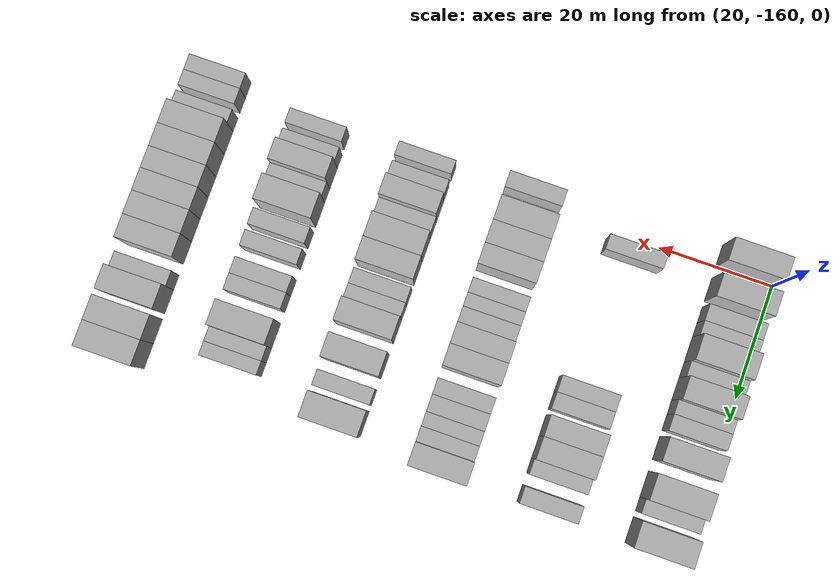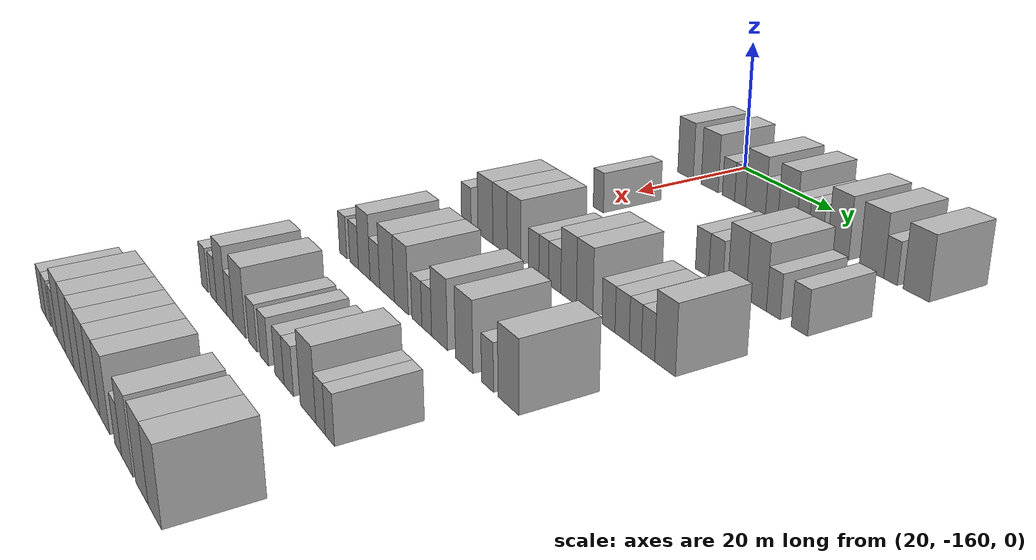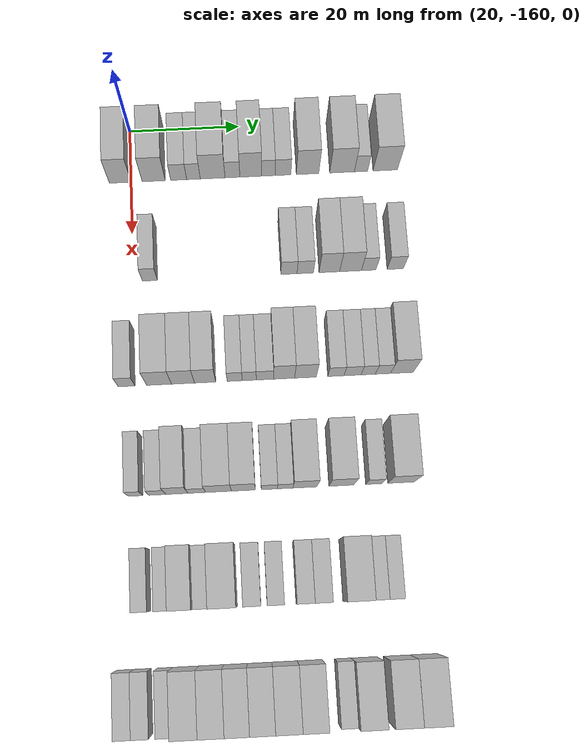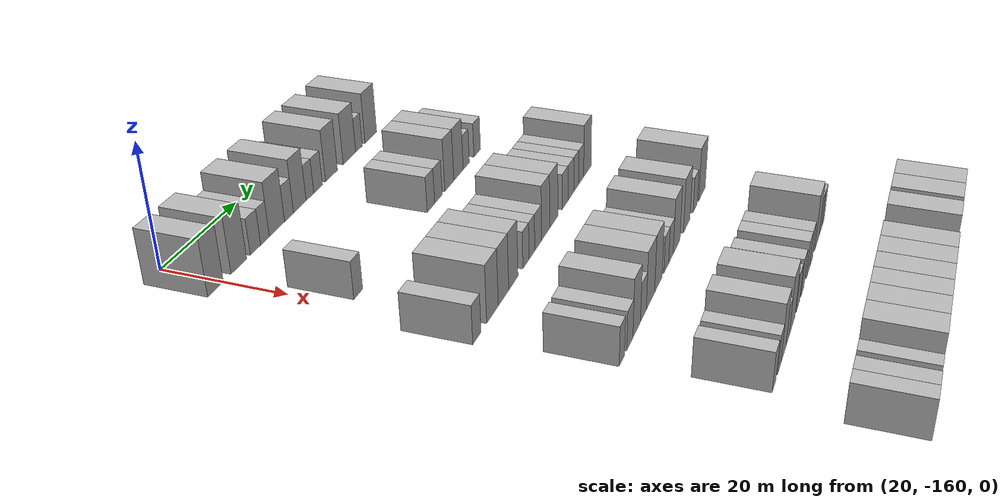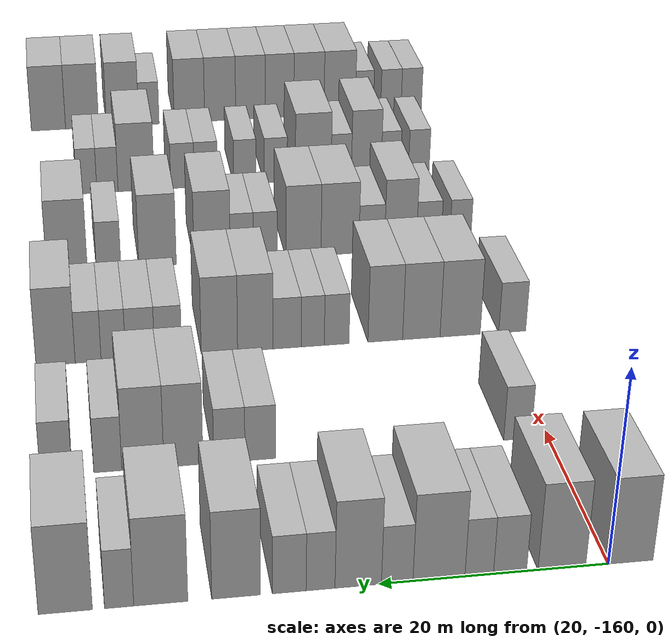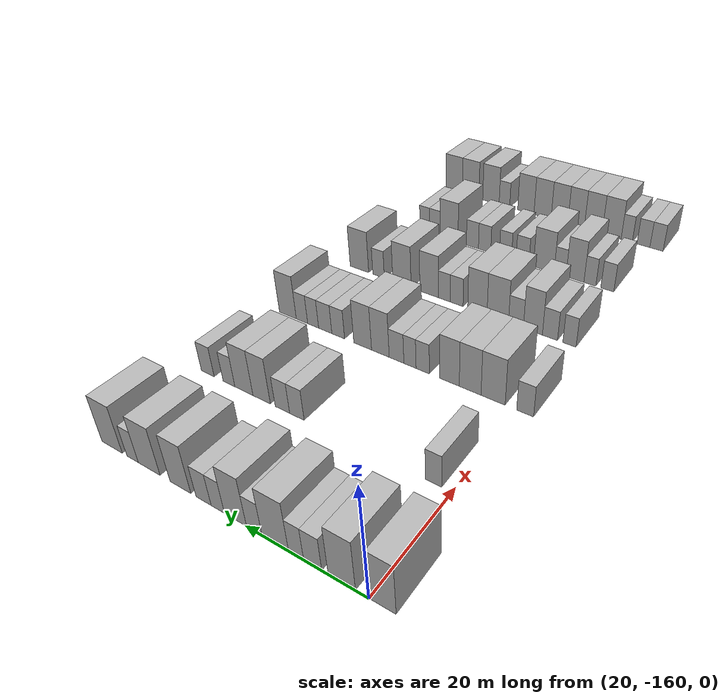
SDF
<sdf version="1.6">
 <world name="default">
  <model name="building_51">
   <static>1</static>
   <pose>25.0000 -161.9546 0 0.000000 0.000000 0.000000</pose>
   <link name="link">
    <pose>0 0 4.50 0 0 0</pose>
    <collision name="collision"><geometry><box><size>10.0000 3.9561 9.0000</size></box></geometry></collision>
    <visual name="visual">
     <cast_shadows>0</cast_shadows>
     <geometry><box><size>10.0000 3.9561 9.0000</size></box></geometry>
     <material>
      <script>
       <uri>model://HANNAS_wall/materials/scripts</uri>
       <uri>model://HANNAS_wall/materials/textures</uri>
       <name>vrc/HANNAS_wall</name>
      </script>
     </material>
    </visual>
   </link>
  </model>
  <model name="building_52">
   <static>1</static>
   <pose>25.0000 -155.8818 0 0.000000 0.000000 0.000000</pose>
   <link name="link">
    <pose>0 0 4.50 0 0 0</pose>
    <collision name="collision"><geometry><box><size>10.0000 4.1895 9.0000</size></box></geometry></collision>
    <visual name="visual">
     <cast_shadows>0</cast_shadows>
     <geometry><box><size>10.0000 4.1895 9.0000</size></box></geometry>
     <material>
      <script>
       <uri>model://HANNAS_wall/materials/scripts</uri>
       <uri>model://HANNAS_wall/materials/textures</uri>
       <name>vrc/HANNAS_wall</name>
      </script>
     </material>
    </visual>
   </link>
  </model>
  <model name="building_53">
   <static>1</static>
   <pose>25.0000 -151.3424 0 0.000000 0.000000 0.000000</pose>
   <link name="link">
    <pose>0 0 3.00 0 0 0</pose>
    <collision name="collision"><geometry><box><size>10.0000 2.8892 6.0000</size></box></geometry></collision>
    <visual name="visual">
     <cast_shadows>0</cast_shadows>
     <geometry><box><size>10.0000 2.8892 6.0000</size></box></geometry>
     <material>
      <script>
       <uri>model://HANNAS_wall/materials/scripts</uri>
       <uri>model://HANNAS_wall/materials/textures</uri>
       <name>vrc/HANNAS_wall</name>
      </script>
     </material>
    </visual>
   </link>
  </model>
  <model name="building_54">
   <static>1</static>
   <pose>25.0000 -148.6590 0 0.000000 0.000000 0.000000</pose>
   <link name="link">
    <pose>0 0 3.00 0 0 0</pose>
    <collision name="collision"><geometry><box><size>10.0000 2.4776 6.0000</size></box></geometry></collision>
    <visual name="visual">
     <cast_shadows>0</cast_shadows>
     <geometry><box><size>10.0000 2.4776 6.0000</size></box></geometry>
     <material>
      <script>
       <uri>model://HANNAS_wall/materials/scripts</uri>
       <uri>model://HANNAS_wall/materials/textures</uri>
       <name>vrc/HANNAS_wall</name>
      </script>
     </material>
    </visual>
   </link>
  </model>
  <model name="building_55">
   <static>1</static>
   <pose>25.0000 -145.1750 0 0.000000 0.000000 0.000000</pose>
   <link name="link">
    <pose>0 0 4.50 0 0 0</pose>
    <collision name="collision"><geometry><box><size>10.0000 4.4905 9.0000</size></box></geometry></collision>
    <visual name="visual">
     <cast_shadows>0</cast_shadows>
     <geometry><box><size>10.0000 4.4905 9.0000</size></box></geometry>
     <material>
      <script>
       <uri>model://HANNAS_wall/materials/scripts</uri>
       <uri>model://HANNAS_wall/materials/textures</uri>
       <name>vrc/HANNAS_wall</name>
      </script>
     </material>
    </visual>
   </link>
  </model>
  <model name="building_56">
   <static>1</static>
   <pose>25.0000 -141.5778 0 0.000000 0.000000 0.000000</pose>
   <link name="link">
    <pose>0 0 3.00 0 0 0</pose>
    <collision name="collision"><geometry><box><size>10.0000 2.7038 6.0000</size></box></geometry></collision>
    <visual name="visual">
     <cast_shadows>0</cast_shadows>
     <geometry><box><size>10.0000 2.7038 6.0000</size></box></geometry>
     <material>
      <script>
       <uri>model://HANNAS_wall/materials/scripts</uri>
       <uri>model://HANNAS_wall/materials/textures</uri>
       <name>vrc/HANNAS_wall</name>
      </script>
     </material>
    </visual>
   </link>
  </model>
  <model name="building_57">
   <static>1</static>
   <pose>25.0000 -138.2431 0 0.000000 0.000000 0.000000</pose>
   <link name="link">
    <pose>0 0 4.50 0 0 0</pose>
    <collision name="collision"><geometry><box><size>10.0000 3.9657 9.0000</size></box></geometry></collision>
    <visual name="visual">
     <cast_shadows>0</cast_shadows>
     <geometry><box><size>10.0000 3.9657 9.0000</size></box></geometry>
     <material>
      <script>
       <uri>model://HANNAS_wall/materials/scripts</uri>
       <uri>model://HANNAS_wall/materials/textures</uri>
       <name>vrc/HANNAS_wall</name>
      </script>
     </material>
    </visual>
   </link>
  </model>
  <model name="building_58">
   <static>1</static>
   <pose>25.0000 -135.0337 0 0.000000 0.000000 0.000000</pose>
   <link name="link">
    <pose>0 0 3.00 0 0 0</pose>
    <collision name="collision"><geometry><box><size>10.0000 2.4530 6.0000</size></box></geometry></collision>
    <visual name="visual">
     <cast_shadows>0</cast_shadows>
     <geometry><box><size>10.0000 2.4530 6.0000</size></box></geometry>
     <material>
      <script>
       <uri>model://HANNAS_wall/materials/scripts</uri>
       <uri>model://HANNAS_wall/materials/textures</uri>
       <name>vrc/HANNAS_wall</name>
      </script>
     </material>
    </visual>
   </link>
  </model>
  <model name="building_59">
   <static>1</static>
   <pose>25.0000 -132.3782 0 0.000000 0.000000 0.000000</pose>
   <link name="link">
    <pose>0 0 3.00 0 0 0</pose>
    <collision name="collision"><geometry><box><size>10.0000 2.8579 6.0000</size></box></geometry></collision>
    <visual name="visual">
     <cast_shadows>0</cast_shadows>
     <geometry><box><size>10.0000 2.8579 6.0000</size></box></geometry>
     <material>
      <script>
       <uri>model://HANNAS_wall/materials/scripts</uri>
       <uri>model://HANNAS_wall/materials/textures</uri>
       <name>vrc/HANNAS_wall</name>
      </script>
     </material>
    </visual>
   </link>
  </model>
  <model name="building_60">
   <static>1</static>
   <pose>25.0000 -127.9079 0 0.000000 0.000000 0.000000</pose>
   <link name="link">
    <pose>0 0 4.50 0 0 0</pose>
    <collision name="collision"><geometry><box><size>10.0000 4.0826 9.0000</size></box></geometry></collision>
    <visual name="visual">
     <cast_shadows>0</cast_shadows>
     <geometry><box><size>10.0000 4.0826 9.0000</size></box></geometry>
     <material>
      <script>
       <uri>model://HANNAS_wall/materials/scripts</uri>
       <uri>model://HANNAS_wall/materials/textures</uri>
       <name>vrc/HANNAS_wall</name>
      </script>
     </material>
    </visual>
   </link>
  </model>
  <model name="building_61">
   <static>1</static>
   <pose>25.0000 -121.6200 0 0.000000 0.000000 0.000000</pose>
   <link name="link">
    <pose>0 0 4.50 0 0 0</pose>
    <collision name="collision"><geometry><box><size>10.0000 4.4933 9.0000</size></box></geometry></collision>
    <visual name="visual">
     <cast_shadows>0</cast_shadows>
     <geometry><box><size>10.0000 4.4933 9.0000</size></box></geometry>
     <material>
      <script>
       <uri>model://HANNAS_wall/materials/scripts</uri>
       <uri>model://HANNAS_wall/materials/textures</uri>
       <name>vrc/HANNAS_wall</name>
      </script>
     </material>
    </visual>
   </link>
  </model>
  <model name="building_62">
   <static>1</static>
   <pose>25.0000 -118.1659 0 0.000000 0.000000 0.000000</pose>
   <link name="link">
    <pose>0 0 3.00 0 0 0</pose>
    <collision name="collision"><geometry><box><size>10.0000 2.4149 6.0000</size></box></geometry></collision>
    <visual name="visual">
     <cast_shadows>0</cast_shadows>
     <geometry><box><size>10.0000 2.4149 6.0000</size></box></geometry>
     <material>
      <script>
       <uri>model://HANNAS_wall/materials/scripts</uri>
       <uri>model://HANNAS_wall/materials/textures</uri>
       <name>vrc/HANNAS_wall</name>
      </script>
     </material>
    </visual>
   </link>
  </model>
  <model name="building_63">
   <static>1</static>
   <pose>25.0000 -113.7338 0 0.000000 0.000000 0.000000</pose>
   <link name="link">
    <pose>0 0 4.50 0 0 0</pose>
    <collision name="collision"><geometry><box><size>10.0000 4.4494 9.0000</size></box></geometry></collision>
    <visual name="visual">
     <cast_shadows>0</cast_shadows>
     <geometry><box><size>10.0000 4.4494 9.0000</size></box></geometry>
     <material>
      <script>
       <uri>model://HANNAS_wall/materials/scripts</uri>
       <uri>model://HANNAS_wall/materials/textures</uri>
       <name>vrc/HANNAS_wall</name>
      </script>
     </material>
    </visual>
   </link>
  </model>
  <model name="building_219">
   <static>1</static>
   <pose>44.0000 -157.0075 0 0.000000 0.000000 0.000000</pose>
   <link name="link">
    <pose>0 0 3.00 0 0 0</pose>
    <collision name="collision"><geometry><box><size>10.0000 2.6795 6.0000</size></box></geometry></collision>
    <visual name="visual">
     <cast_shadows>0</cast_shadows>
     <geometry><box><size>10.0000 2.6795 6.0000</size></box></geometry>
     <material>
      <script>
       <uri>model://HANNAS_wall/materials/scripts</uri>
       <uri>model://HANNAS_wall/materials/textures</uri>
       <name>vrc/HANNAS_wall</name>
      </script>
     </material>
    </visual>
   </link>
  </model>
  <model name="building_220">
   <static>1</static>
   <pose>44.0000 -132.3652 0 0.000000 0.000000 0.000000</pose>
   <link name="link">
    <pose>0 0 3.00 0 0 0</pose>
    <collision name="collision"><geometry><box><size>10.0000 2.8684 6.0000</size></box></geometry></collision>
    <visual name="visual">
     <cast_shadows>0</cast_shadows>
     <geometry><box><size>10.0000 2.8684 6.0000</size></box></geometry>
     <material>
      <script>
       <uri>model://HANNAS_wall/materials/scripts</uri>
       <uri>model://HANNAS_wall/materials/textures</uri>
       <name>vrc/HANNAS_wall</name>
      </script>
     </material>
    </visual>
   </link>
  </model>
  <model name="building_221">
   <static>1</static>
   <pose>44.0000 -129.4702 0 0.000000 0.000000 0.000000</pose>
   <link name="link">
    <pose>0 0 3.00 0 0 0</pose>
    <collision name="collision"><geometry><box><size>10.0000 2.9218 6.0000</size></box></geometry></collision>
    <visual name="visual">
     <cast_shadows>0</cast_shadows>
     <geometry><box><size>10.0000 2.9218 6.0000</size></box></geometry>
     <material>
      <script>
       <uri>model://HANNAS_wall/materials/scripts</uri>
       <uri>model://HANNAS_wall/materials/textures</uri>
       <name>vrc/HANNAS_wall</name>
      </script>
     </material>
    </visual>
   </link>
  </model>
  <model name="building_222">
   <static>1</static>
   <pose>44.0000 -125.1860 0 0.000000 0.000000 0.000000</pose>
   <link name="link">
    <pose>0 0 4.50 0 0 0</pose>
    <collision name="collision"><geometry><box><size>10.0000 3.6465 9.0000</size></box></geometry></collision>
    <visual name="visual">
     <cast_shadows>0</cast_shadows>
     <geometry><box><size>10.0000 3.6465 9.0000</size></box></geometry>
     <material>
      <script>
       <uri>model://HANNAS_wall/materials/scripts</uri>
       <uri>model://HANNAS_wall/materials/textures</uri>
       <name>vrc/HANNAS_wall</name>
      </script>
     </material>
    </visual>
   </link>
  </model>
  <model name="building_223">
   <static>1</static>
   <pose>44.0000 -121.4188 0 0.000000 0.000000 0.000000</pose>
   <link name="link">
    <pose>0 0 4.50 0 0 0</pose>
    <collision name="collision"><geometry><box><size>10.0000 3.8879 9.0000</size></box></geometry></collision>
    <visual name="visual">
     <cast_shadows>0</cast_shadows>
     <geometry><box><size>10.0000 3.8879 9.0000</size></box></geometry>
     <material>
      <script>
       <uri>model://HANNAS_wall/materials/scripts</uri>
       <uri>model://HANNAS_wall/materials/textures</uri>
       <name>vrc/HANNAS_wall</name>
      </script>
     </material>
    </visual>
   </link>
  </model>
  <model name="building_224">
   <static>1</static>
   <pose>44.0000 -118.1825 0 0.000000 0.000000 0.000000</pose>
   <link name="link">
    <pose>0 0 3.00 0 0 0</pose>
    <collision name="collision"><geometry><box><size>10.0000 2.5848 6.0000</size></box></geometry></collision>
    <visual name="visual">
     <cast_shadows>0</cast_shadows>
     <geometry><box><size>10.0000 2.5848 6.0000</size></box></geometry>
     <material>
      <script>
       <uri>model://HANNAS_wall/materials/scripts</uri>
       <uri>model://HANNAS_wall/materials/textures</uri>
       <name>vrc/HANNAS_wall</name>
      </script>
     </material>
    </visual>
   </link>
  </model>
  <model name="building_225">
   <static>1</static>
   <pose>44.0000 -113.4386 0 0.000000 0.000000 0.000000</pose>
   <link name="link">
    <pose>0 0 3.00 0 0 0</pose>
    <collision name="collision"><geometry><box><size>10.0000 2.9030 6.0000</size></box></geometry></collision>
    <visual name="visual">
     <cast_shadows>0</cast_shadows>
     <geometry><box><size>10.0000 2.9030 6.0000</size></box></geometry>
     <material>
      <script>
       <uri>model://HANNAS_wall/materials/scripts</uri>
       <uri>model://HANNAS_wall/materials/textures</uri>
       <name>vrc/HANNAS_wall</name>
      </script>
     </material>
    </visual>
   </link>
  </model>
  <model name="building_394">
   <static>1</static>
   <pose>63.0000 -161.4692 0 0.000000 0.000000 0.000000</pose>
   <link name="link">
    <pose>0 0 3.00 0 0 0</pose>
    <collision name="collision"><geometry><box><size>10.0000 2.8931 6.0000</size></box></geometry></collision>
    <visual name="visual">
     <cast_shadows>0</cast_shadows>
     <geometry><box><size>10.0000 2.8931 6.0000</size></box></geometry>
     <material>
      <script>
       <uri>model://HANNAS_wall/materials/scripts</uri>
       <uri>model://HANNAS_wall/materials/textures</uri>
       <name>vrc/HANNAS_wall</name>
      </script>
     </material>
    </visual>
   </link>
  </model>
  <model name="building_395">
   <static>1</static>
   <pose>63.0000 -155.8781 0 0.000000 0.000000 0.000000</pose>
   <link name="link">
    <pose>0 0 4.50 0 0 0</pose>
    <collision name="collision"><geometry><box><size>10.0000 4.2893 9.0000</size></box></geometry></collision>
    <visual name="visual">
     <cast_shadows>0</cast_shadows>
     <geometry><box><size>10.0000 4.2893 9.0000</size></box></geometry>
     <material>
      <script>
       <uri>model://HANNAS_wall/materials/scripts</uri>
       <uri>model://HANNAS_wall/materials/textures</uri>
       <name>vrc/HANNAS_wall</name>
      </script>
     </material>
    </visual>
   </link>
  </model>
  <model name="building_396">
   <static>1</static>
   <pose>63.0000 -151.7437 0 0.000000 0.000000 0.000000</pose>
   <link name="link">
    <pose>0 0 4.50 0 0 0</pose>
    <collision name="collision"><geometry><box><size>10.0000 3.9796 9.0000</size></box></geometry></collision>
    <visual name="visual">
     <cast_shadows>0</cast_shadows>
     <geometry><box><size>10.0000 3.9796 9.0000</size></box></geometry>
     <material>
      <script>
       <uri>model://HANNAS_wall/materials/scripts</uri>
       <uri>model://HANNAS_wall/materials/textures</uri>
       <name>vrc/HANNAS_wall</name>
      </script>
     </material>
    </visual>
   </link>
  </model>
  <model name="building_397">
   <static>1</static>
   <pose>63.0000 -147.9210 0 0.000000 0.000000 0.000000</pose>
   <link name="link">
    <pose>0 0 4.50 0 0 0</pose>
    <collision name="collision"><geometry><box><size>10.0000 3.6657 9.0000</size></box></geometry></collision>
    <visual name="visual">
     <cast_shadows>0</cast_shadows>
     <geometry><box><size>10.0000 3.6657 9.0000</size></box></geometry>
     <material>
      <script>
       <uri>model://HANNAS_wall/materials/scripts</uri>
       <uri>model://HANNAS_wall/materials/textures</uri>
       <name>vrc/HANNAS_wall</name>
      </script>
     </material>
    </visual>
   </link>
  </model>
  <model name="building_398">
   <static>1</static>
   <pose>63.0000 -142.7898 0 0.000000 0.000000 0.000000</pose>
   <link name="link">
    <pose>0 0 3.00 0 0 0</pose>
    <collision name="collision"><geometry><box><size>10.0000 2.5966 6.0000</size></box></geometry></collision>
    <visual name="visual">
     <cast_shadows>0</cast_shadows>
     <geometry><box><size>10.0000 2.5966 6.0000</size></box></geometry>
     <material>
      <script>
       <uri>model://HANNAS_wall/materials/scripts</uri>
       <uri>model://HANNAS_wall/materials/textures</uri>
       <name>vrc/HANNAS_wall</name>
      </script>
     </material>
    </visual>
   </link>
  </model>
  <model name="building_399">
   <static>1</static>
   <pose>63.0000 -140.2819 0 0.000000 0.000000 0.000000</pose>
   <link name="link">
    <pose>0 0 3.00 0 0 0</pose>
    <collision name="collision"><geometry><box><size>10.0000 2.4192 6.0000</size></box></geometry></collision>
    <visual name="visual">
     <cast_shadows>0</cast_shadows>
     <geometry><box><size>10.0000 2.4192 6.0000</size></box></geometry>
     <material>
      <script>
       <uri>model://HANNAS_wall/materials/scripts</uri>
       <uri>model://HANNAS_wall/materials/textures</uri>
       <name>vrc/HANNAS_wall</name>
      </script>
     </material>
    </visual>
   </link>
  </model>
  <model name="building_400">
   <static>1</static>
   <pose>63.0000 -137.5897 0 0.000000 0.000000 0.000000</pose>
   <link name="link">
    <pose>0 0 3.00 0 0 0</pose>
    <collision name="collision"><geometry><box><size>10.0000 2.9651 6.0000</size></box></geometry></collision>
    <visual name="visual">
     <cast_shadows>0</cast_shadows>
     <geometry><box><size>10.0000 2.9651 6.0000</size></box></geometry>
     <material>
      <script>
       <uri>model://HANNAS_wall/materials/scripts</uri>
       <uri>model://HANNAS_wall/materials/textures</uri>
       <name>vrc/HANNAS_wall</name>
      </script>
     </material>
    </visual>
   </link>
  </model>
  <model name="building_401">
   <static>1</static>
   <pose>63.0000 -134.2812 0 0.000000 0.000000 0.000000</pose>
   <link name="link">
    <pose>0 0 4.50 0 0 0</pose>
    <collision name="collision"><geometry><box><size>10.0000 3.6519 9.0000</size></box></geometry></collision>
    <visual name="visual">
     <cast_shadows>0</cast_shadows>
     <geometry><box><size>10.0000 3.6519 9.0000</size></box></geometry>
     <material>
      <script>
       <uri>model://HANNAS_wall/materials/scripts</uri>
       <uri>model://HANNAS_wall/materials/textures</uri>
       <name>vrc/HANNAS_wall</name>
      </script>
     </material>
    </visual>
   </link>
  </model>
  <model name="building_402">
   <static>1</static>
   <pose>63.0000 -130.5758 0 0.000000 0.000000 0.000000</pose>
   <link name="link">
    <pose>0 0 4.50 0 0 0</pose>
    <collision name="collision"><geometry><box><size>10.0000 3.7589 9.0000</size></box></geometry></collision>
    <visual name="visual">
     <cast_shadows>0</cast_shadows>
     <geometry><box><size>10.0000 3.7589 9.0000</size></box></geometry>
     <material>
      <script>
       <uri>model://HANNAS_wall/materials/scripts</uri>
       <uri>model://HANNAS_wall/materials/textures</uri>
       <name>vrc/HANNAS_wall</name>
      </script>
     </material>
    </visual>
   </link>
  </model>
  <model name="building_403">
   <static>1</static>
   <pose>63.0000 -125.2984 0 0.000000 0.000000 0.000000</pose>
   <link name="link">
    <pose>0 0 3.00 0 0 0</pose>
    <collision name="collision"><geometry><box><size>10.0000 2.7959 6.0000</size></box></geometry></collision>
    <visual name="visual">
     <cast_shadows>0</cast_shadows>
     <geometry><box><size>10.0000 2.7959 6.0000</size></box></geometry>
     <material>
      <script>
       <uri>model://HANNAS_wall/materials/scripts</uri>
       <uri>model://HANNAS_wall/materials/textures</uri>
       <name>vrc/HANNAS_wall</name>
      </script>
     </material>
    </visual>
   </link>
  </model>
  <model name="building_404">
   <static>1</static>
   <pose>63.0000 -122.4198 0 0.000000 0.000000 0.000000</pose>
   <link name="link">
    <pose>0 0 3.00 0 0 0</pose>
    <collision name="collision"><geometry><box><size>10.0000 2.9614 6.0000</size></box></geometry></collision>
    <visual name="visual">
     <cast_shadows>0</cast_shadows>
     <geometry><box><size>10.0000 2.9614 6.0000</size></box></geometry>
     <material>
      <script>
       <uri>model://HANNAS_wall/materials/scripts</uri>
       <uri>model://HANNAS_wall/materials/textures</uri>
       <name>vrc/HANNAS_wall</name>
      </script>
     </material>
    </visual>
   </link>
  </model>
  <model name="building_405">
   <static>1</static>
   <pose>63.0000 -119.6929 0 0.000000 0.000000 0.000000</pose>
   <link name="link">
    <pose>0 0 3.00 0 0 0</pose>
    <collision name="collision"><geometry><box><size>10.0000 2.4924 6.0000</size></box></geometry></collision>
    <visual name="visual">
     <cast_shadows>0</cast_shadows>
     <geometry><box><size>10.0000 2.4924 6.0000</size></box></geometry>
     <material>
      <script>
       <uri>model://HANNAS_wall/materials/scripts</uri>
       <uri>model://HANNAS_wall/materials/textures</uri>
       <name>vrc/HANNAS_wall</name>
      </script>
     </material>
    </visual>
   </link>
  </model>
  <model name="building_406">
   <static>1</static>
   <pose>63.0000 -117.1307 0 0.000000 0.000000 0.000000</pose>
   <link name="link">
    <pose>0 0 3.00 0 0 0</pose>
    <collision name="collision"><geometry><box><size>10.0000 2.6319 6.0000</size></box></geometry></collision>
    <visual name="visual">
     <cast_shadows>0</cast_shadows>
     <geometry><box><size>10.0000 2.6319 6.0000</size></box></geometry>
     <material>
      <script>
       <uri>model://HANNAS_wall/materials/scripts</uri>
       <uri>model://HANNAS_wall/materials/textures</uri>
       <name>vrc/HANNAS_wall</name>
      </script>
     </material>
    </visual>
   </link>
  </model>
  <model name="building_407">
   <static>1</static>
   <pose>63.0000 -113.8314 0 0.000000 0.000000 0.000000</pose>
   <link name="link">
    <pose>0 0 4.50 0 0 0</pose>
    <collision name="collision"><geometry><box><size>10.0000 3.9666 9.0000</size></box></geometry></collision>
    <visual name="visual">
     <cast_shadows>0</cast_shadows>
     <geometry><box><size>10.0000 3.9666 9.0000</size></box></geometry>
     <material>
      <script>
       <uri>model://HANNAS_wall/materials/scripts</uri>
       <uri>model://HANNAS_wall/materials/textures</uri>
       <name>vrc/HANNAS_wall</name>
      </script>
     </material>
    </visual>
   </link>
  </model>
  <model name="building_580">
   <static>1</static>
   <pose>82.0000 -160.2817 0 0.000000 0.000000 0.000000</pose>
   <link name="link">
    <pose>0 0 3.00 0 0 0</pose>
    <collision name="collision"><geometry><box><size>10.0000 2.4520 6.0000</size></box></geometry></collision>
    <visual name="visual">
     <cast_shadows>0</cast_shadows>
     <geometry><box><size>10.0000 2.4520 6.0000</size></box></geometry>
     <material>
      <script>
       <uri>model://HANNAS_wall/materials/scripts</uri>
       <uri>model://HANNAS_wall/materials/textures</uri>
       <name>vrc/HANNAS_wall</name>
      </script>
     </material>
    </visual>
   </link>
  </model>
  <model name="building_581">
   <static>1</static>
   <pose>82.0000 -156.6199 0 0.000000 0.000000 0.000000</pose>
   <link name="link">
    <pose>0 0 3.00 0 0 0</pose>
    <collision name="collision"><geometry><box><size>10.0000 2.8716 6.0000</size></box></geometry></collision>
    <visual name="visual">
     <cast_shadows>0</cast_shadows>
     <geometry><box><size>10.0000 2.8716 6.0000</size></box></geometry>
     <material>
      <script>
       <uri>model://HANNAS_wall/materials/scripts</uri>
       <uri>model://HANNAS_wall/materials/textures</uri>
       <name>vrc/HANNAS_wall</name>
      </script>
     </material>
    </visual>
   </link>
  </model>
  <model name="building_582">
   <static>1</static>
   <pose>82.0000 -153.3383 0 0.000000 0.000000 0.000000</pose>
   <link name="link">
    <pose>0 0 4.50 0 0 0</pose>
    <collision name="collision"><geometry><box><size>10.0000 3.6917 9.0000</size></box></geometry></collision>
    <visual name="visual">
     <cast_shadows>0</cast_shadows>
     <geometry><box><size>10.0000 3.6917 9.0000</size></box></geometry>
     <material>
      <script>
       <uri>model://HANNAS_wall/materials/scripts</uri>
       <uri>model://HANNAS_wall/materials/textures</uri>
       <name>vrc/HANNAS_wall</name>
      </script>
     </material>
    </visual>
   </link>
  </model>
  <model name="building_583">
   <static>1</static>
   <pose>82.0000 -150.0145 0 0.000000 0.000000 0.000000</pose>
   <link name="link">
    <pose>0 0 3.00 0 0 0</pose>
    <collision name="collision"><geometry><box><size>10.0000 2.9558 6.0000</size></box></geometry></collision>
    <visual name="visual">
     <cast_shadows>0</cast_shadows>
     <geometry><box><size>10.0000 2.9558 6.0000</size></box></geometry>
     <material>
      <script>
       <uri>model://HANNAS_wall/materials/scripts</uri>
       <uri>model://HANNAS_wall/materials/textures</uri>
       <name>vrc/HANNAS_wall</name>
      </script>
     </material>
    </visual>
   </link>
  </model>
  <model name="building_584">
   <static>1</static>
   <pose>82.0000 -146.3575 0 0.000000 0.000000 0.000000</pose>
   <link name="link">
    <pose>0 0 4.50 0 0 0</pose>
    <collision name="collision"><geometry><box><size>10.0000 4.3582 9.0000</size></box></geometry></collision>
    <visual name="visual">
     <cast_shadows>0</cast_shadows>
     <geometry><box><size>10.0000 4.3582 9.0000</size></box></geometry>
     <material>
      <script>
       <uri>model://HANNAS_wall/materials/scripts</uri>
       <uri>model://HANNAS_wall/materials/textures</uri>
       <name>vrc/HANNAS_wall</name>
      </script>
     </material>
    </visual>
   </link>
  </model>
  <model name="building_585">
   <static>1</static>
   <pose>82.0000 -142.1716 0 0.000000 0.000000 0.000000</pose>
   <link name="link">
    <pose>0 0 4.50 0 0 0</pose>
    <collision name="collision"><geometry><box><size>10.0000 4.0137 9.0000</size></box></geometry></collision>
    <visual name="visual">
     <cast_shadows>0</cast_shadows>
     <geometry><box><size>10.0000 4.0137 9.0000</size></box></geometry>
     <material>
      <script>
       <uri>model://HANNAS_wall/materials/scripts</uri>
       <uri>model://HANNAS_wall/materials/textures</uri>
       <name>vrc/HANNAS_wall</name>
      </script>
     </material>
    </visual>
   </link>
  </model>
  <model name="building_586">
   <static>1</static>
   <pose>82.0000 -137.8026 0 0.000000 0.000000 0.000000</pose>
   <link name="link">
    <pose>0 0 3.00 0 0 0</pose>
    <collision name="collision"><geometry><box><size>10.0000 2.7244 6.0000</size></box></geometry></collision>
    <visual name="visual">
     <cast_shadows>0</cast_shadows>
     <geometry><box><size>10.0000 2.7244 6.0000</size></box></geometry>
     <material>
      <script>
       <uri>model://HANNAS_wall/materials/scripts</uri>
       <uri>model://HANNAS_wall/materials/textures</uri>
       <name>vrc/HANNAS_wall</name>
      </script>
     </material>
    </visual>
   </link>
  </model>
  <model name="building_587">
   <static>1</static>
   <pose>82.0000 -135.1393 0 0.000000 0.000000 0.000000</pose>
   <link name="link">
    <pose>0 0 3.00 0 0 0</pose>
    <collision name="collision"><geometry><box><size>10.0000 2.6021 6.0000</size></box></geometry></collision>
    <visual name="visual">
     <cast_shadows>0</cast_shadows>
     <geometry><box><size>10.0000 2.6021 6.0000</size></box></geometry>
     <material>
      <script>
       <uri>model://HANNAS_wall/materials/scripts</uri>
       <uri>model://HANNAS_wall/materials/textures</uri>
       <name>vrc/HANNAS_wall</name>
      </script>
     </material>
    </visual>
   </link>
  </model>
  <model name="building_588">
   <static>1</static>
   <pose>82.0000 -131.7938 0 0.000000 0.000000 0.000000</pose>
   <link name="link">
    <pose>0 0 4.50 0 0 0</pose>
    <collision name="collision"><geometry><box><size>10.0000 4.0889 9.0000</size></box></geometry></collision>
    <visual name="visual">
     <cast_shadows>0</cast_shadows>
     <geometry><box><size>10.0000 4.0889 9.0000</size></box></geometry>
     <material>
      <script>
       <uri>model://HANNAS_wall/materials/scripts</uri>
       <uri>model://HANNAS_wall/materials/textures</uri>
       <name>vrc/HANNAS_wall</name>
      </script>
     </material>
    </visual>
   </link>
  </model>
  <model name="building_589">
   <static>1</static>
   <pose>82.0000 -125.6420 0 0.000000 0.000000 0.000000</pose>
   <link name="link">
    <pose>0 0 4.50 0 0 0</pose>
    <collision name="collision"><geometry><box><size>10.0000 4.2147 9.0000</size></box></geometry></collision>
    <visual name="visual">
     <cast_shadows>0</cast_shadows>
     <geometry><box><size>10.0000 4.2147 9.0000</size></box></geometry>
     <material>
      <script>
       <uri>model://HANNAS_wall/materials/scripts</uri>
       <uri>model://HANNAS_wall/materials/textures</uri>
       <name>vrc/HANNAS_wall</name>
      </script>
     </material>
    </visual>
   </link>
  </model>
  <model name="building_590">
   <static>1</static>
   <pose>82.0000 -120.1668 0 0.000000 0.000000 0.000000</pose>
   <link name="link">
    <pose>0 0 3.00 0 0 0</pose>
    <collision name="collision"><geometry><box><size>10.0000 2.7358 6.0000</size></box></geometry></collision>
    <visual name="visual">
     <cast_shadows>0</cast_shadows>
     <geometry><box><size>10.0000 2.7358 6.0000</size></box></geometry>
     <material>
      <script>
       <uri>model://HANNAS_wall/materials/scripts</uri>
       <uri>model://HANNAS_wall/materials/textures</uri>
       <name>vrc/HANNAS_wall</name>
      </script>
     </material>
    </visual>
   </link>
  </model>
  <model name="building_591">
   <static>1</static>
   <pose>82.0000 -115.5491 0 0.000000 0.000000 0.000000</pose>
   <link name="link">
    <pose>0 0 4.50 0 0 0</pose>
    <collision name="collision"><geometry><box><size>10.0000 4.4997 9.0000</size></box></geometry></collision>
    <visual name="visual">
     <cast_shadows>0</cast_shadows>
     <geometry><box><size>10.0000 4.4997 9.0000</size></box></geometry>
     <material>
      <script>
       <uri>model://HANNAS_wall/materials/scripts</uri>
       <uri>model://HANNAS_wall/materials/textures</uri>
       <name>vrc/HANNAS_wall</name>
      </script>
     </material>
    </visual>
   </link>
  </model>
  <model name="building_764">
   <static>1</static>
   <pose>101.0000 -159.4870 0 0.000000 0.000000 0.000000</pose>
   <link name="link">
    <pose>0 0 3.00 0 0 0</pose>
    <collision name="collision"><geometry><box><size>10.0000 2.6029 6.0000</size></box></geometry></collision>
    <visual name="visual">
     <cast_shadows>0</cast_shadows>
     <geometry><box><size>10.0000 2.6029 6.0000</size></box></geometry>
     <material>
      <script>
       <uri>model://HANNAS_wall/materials/scripts</uri>
       <uri>model://HANNAS_wall/materials/textures</uri>
       <name>vrc/HANNAS_wall</name>
      </script>
     </material>
    </visual>
   </link>
  </model>
  <model name="building_765">
   <static>1</static>
   <pose>101.0000 -155.9650 0 0.000000 0.000000 0.000000</pose>
   <link name="link">
    <pose>0 0 3.00 0 0 0</pose>
    <collision name="collision"><geometry><box><size>10.0000 2.4411 6.0000</size></box></geometry></collision>
    <visual name="visual">
     <cast_shadows>0</cast_shadows>
     <geometry><box><size>10.0000 2.4411 6.0000</size></box></geometry>
     <material>
      <script>
       <uri>model://HANNAS_wall/materials/scripts</uri>
       <uri>model://HANNAS_wall/materials/textures</uri>
       <name>vrc/HANNAS_wall</name>
      </script>
     </material>
    </visual>
   </link>
  </model>
  <model name="building_766">
   <static>1</static>
   <pose>101.0000 -152.8766 0 0.000000 0.000000 0.000000</pose>
   <link name="link">
    <pose>0 0 4.50 0 0 0</pose>
    <collision name="collision"><geometry><box><size>10.0000 3.7357 9.0000</size></box></geometry></collision>
    <visual name="visual">
     <cast_shadows>0</cast_shadows>
     <geometry><box><size>10.0000 3.7357 9.0000</size></box></geometry>
     <material>
      <script>
       <uri>model://HANNAS_wall/materials/scripts</uri>
       <uri>model://HANNAS_wall/materials/textures</uri>
       <name>vrc/HANNAS_wall</name>
      </script>
     </material>
    </visual>
   </link>
  </model>
  <model name="building_767">
   <static>1</static>
   <pose>101.0000 -149.7490 0 0.000000 0.000000 0.000000</pose>
   <link name="link">
    <pose>0 0 3.00 0 0 0</pose>
    <collision name="collision"><geometry><box><size>10.0000 2.5195 6.0000</size></box></geometry></collision>
    <visual name="visual">
     <cast_shadows>0</cast_shadows>
     <geometry><box><size>10.0000 2.5195 6.0000</size></box></geometry>
     <material>
      <script>
       <uri>model://HANNAS_wall/materials/scripts</uri>
       <uri>model://HANNAS_wall/materials/textures</uri>
       <name>vrc/HANNAS_wall</name>
      </script>
     </material>
    </visual>
   </link>
  </model>
  <model name="building_768">
   <static>1</static>
   <pose>101.0000 -146.2577 0 0.000000 0.000000 0.000000</pose>
   <link name="link">
    <pose>0 0 4.50 0 0 0</pose>
    <collision name="collision"><geometry><box><size>10.0000 4.4630 9.0000</size></box></geometry></collision>
    <visual name="visual">
     <cast_shadows>0</cast_shadows>
     <geometry><box><size>10.0000 4.4630 9.0000</size></box></geometry>
     <material>
      <script>
       <uri>model://HANNAS_wall/materials/scripts</uri>
       <uri>model://HANNAS_wall/materials/textures</uri>
       <name>vrc/HANNAS_wall</name>
      </script>
     </material>
    </visual>
   </link>
  </model>
  <model name="building_769">
   <static>1</static>
   <pose>101.0000 -141.5917 0 0.000000 0.000000 0.000000</pose>
   <link name="link">
    <pose>0 0 3.00 0 0 0</pose>
    <collision name="collision"><geometry><box><size>10.0000 2.8690 6.0000</size></box></geometry></collision>
    <visual name="visual">
     <cast_shadows>0</cast_shadows>
     <geometry><box><size>10.0000 2.8690 6.0000</size></box></geometry>
     <material>
      <script>
       <uri>model://HANNAS_wall/materials/scripts</uri>
       <uri>model://HANNAS_wall/materials/textures</uri>
       <name>vrc/HANNAS_wall</name>
      </script>
     </material>
    </visual>
   </link>
  </model>
  <model name="building_770">
   <static>1</static>
   <pose>101.0000 -137.7802 0 0.000000 0.000000 0.000000</pose>
   <link name="link">
    <pose>0 0 3.00 0 0 0</pose>
    <collision name="collision"><geometry><box><size>10.0000 2.7541 6.0000</size></box></geometry></collision>
    <visual name="visual">
     <cast_shadows>0</cast_shadows>
     <geometry><box><size>10.0000 2.7541 6.0000</size></box></geometry>
     <material>
      <script>
       <uri>model://HANNAS_wall/materials/scripts</uri>
       <uri>model://HANNAS_wall/materials/textures</uri>
       <name>vrc/HANNAS_wall</name>
      </script>
     </material>
    </visual>
   </link>
  </model>
  <model name="building_771">
   <static>1</static>
   <pose>101.0000 -132.9735 0 0.000000 0.000000 0.000000</pose>
   <link name="link">
    <pose>0 0 3.00 0 0 0</pose>
    <collision name="collision"><geometry><box><size>10.0000 2.8594 6.0000</size></box></geometry></collision>
    <visual name="visual">
     <cast_shadows>0</cast_shadows>
     <geometry><box><size>10.0000 2.8594 6.0000</size></box></geometry>
     <material>
      <script>
       <uri>model://HANNAS_wall/materials/scripts</uri>
       <uri>model://HANNAS_wall/materials/textures</uri>
       <name>vrc/HANNAS_wall</name>
      </script>
     </material>
    </visual>
   </link>
  </model>
  <model name="building_772">
   <static>1</static>
   <pose>101.0000 -130.1135 0 0.000000 0.000000 0.000000</pose>
   <link name="link">
    <pose>0 0 3.00 0 0 0</pose>
    <collision name="collision"><geometry><box><size>10.0000 2.8606 6.0000</size></box></geometry></collision>
    <visual name="visual">
     <cast_shadows>0</cast_shadows>
     <geometry><box><size>10.0000 2.8606 6.0000</size></box></geometry>
     <material>
      <script>
       <uri>model://HANNAS_wall/materials/scripts</uri>
       <uri>model://HANNAS_wall/materials/textures</uri>
       <name>vrc/HANNAS_wall</name>
      </script>
     </material>
    </visual>
   </link>
  </model>
  <model name="building_773">
   <static>1</static>
   <pose>101.0000 -124.4743 0 0.000000 0.000000 0.000000</pose>
   <link name="link">
    <pose>0 0 4.50 0 0 0</pose>
    <collision name="collision"><geometry><box><size>10.0000 4.4177 9.0000</size></box></geometry></collision>
    <visual name="visual">
     <cast_shadows>0</cast_shadows>
     <geometry><box><size>10.0000 4.4177 9.0000</size></box></geometry>
     <material>
      <script>
       <uri>model://HANNAS_wall/materials/scripts</uri>
       <uri>model://HANNAS_wall/materials/textures</uri>
       <name>vrc/HANNAS_wall</name>
      </script>
     </material>
    </visual>
   </link>
  </model>
  <model name="building_774">
   <static>1</static>
   <pose>101.0000 -120.9840 0 0.000000 0.000000 0.000000</pose>
   <link name="link">
    <pose>0 0 3.00 0 0 0</pose>
    <collision name="collision"><geometry><box><size>10.0000 2.5629 6.0000</size></box></geometry></collision>
    <visual name="visual">
     <cast_shadows>0</cast_shadows>
     <geometry><box><size>10.0000 2.5629 6.0000</size></box></geometry>
     <material>
      <script>
       <uri>model://HANNAS_wall/materials/scripts</uri>
       <uri>model://HANNAS_wall/materials/textures</uri>
       <name>vrc/HANNAS_wall</name>
      </script>
     </material>
    </visual>
   </link>
  </model>
  <model name="building_775">
   <static>1</static>
   <pose>101.0000 -118.4852 0 0.000000 0.000000 0.000000</pose>
   <link name="link">
    <pose>0 0 3.00 0 0 0</pose>
    <collision name="collision"><geometry><box><size>10.0000 2.4347 6.0000</size></box></geometry></collision>
    <visual name="visual">
     <cast_shadows>0</cast_shadows>
     <geometry><box><size>10.0000 2.4347 6.0000</size></box></geometry>
     <material>
      <script>
       <uri>model://HANNAS_wall/materials/scripts</uri>
       <uri>model://HANNAS_wall/materials/textures</uri>
       <name>vrc/HANNAS_wall</name>
      </script>
     </material>
    </visual>
   </link>
  </model>
  <model name="building_941">
   <static>1</static>
   <pose>120.0000 -162.4864 0 0.000000 0.000000 0.000000</pose>
   <link name="link">
    <pose>0 0 3.00 0 0 0</pose>
    <collision name="collision"><geometry><box><size>10.0000 2.7801 6.0000</size></box></geometry></collision>
    <visual name="visual">
     <cast_shadows>0</cast_shadows>
     <geometry><box><size>10.0000 2.7801 6.0000</size></box></geometry>
     <material>
      <script>
       <uri>model://HANNAS_wall/materials/scripts</uri>
       <uri>model://HANNAS_wall/materials/textures</uri>
       <name>vrc/HANNAS_wall</name>
      </script>
     </material>
    </visual>
   </link>
  </model>
  <model name="building_942">
   <static>1</static>
   <pose>120.0000 -159.7132 0 0.000000 0.000000 0.000000</pose>
   <link name="link">
    <pose>0 0 3.00 0 0 0</pose>
    <collision name="collision"><geometry><box><size>10.0000 2.7661 6.0000</size></box></geometry></collision>
    <visual name="visual">
     <cast_shadows>0</cast_shadows>
     <geometry><box><size>10.0000 2.7661 6.0000</size></box></geometry>
     <material>
      <script>
       <uri>model://HANNAS_wall/materials/scripts</uri>
       <uri>model://HANNAS_wall/materials/textures</uri>
       <name>vrc/HANNAS_wall</name>
      </script>
     </material>
    </visual>
   </link>
  </model>
  <model name="building_943">
   <static>1</static>
   <pose>120.0000 -156.1116 0 0.000000 0.000000 0.000000</pose>
   <link name="link">
    <pose>0 0 3.00 0 0 0</pose>
    <collision name="collision"><geometry><box><size>10.0000 2.4371 6.0000</size></box></geometry></collision>
    <visual name="visual">
     <cast_shadows>0</cast_shadows>
     <geometry><box><size>10.0000 2.4371 6.0000</size></box></geometry>
     <material>
      <script>
       <uri>model://HANNAS_wall/materials/scripts</uri>
       <uri>model://HANNAS_wall/materials/textures</uri>
       <name>vrc/HANNAS_wall</name>
      </script>
     </material>
    </visual>
   </link>
  </model>
  <model name="building_944">
   <static>1</static>
   <pose>120.0000 -152.7763 0 0.000000 0.000000 0.000000</pose>
   <link name="link">
    <pose>0 0 4.50 0 0 0</pose>
    <collision name="collision"><geometry><box><size>10.0000 4.2335 9.0000</size></box></geometry></collision>
    <visual name="visual">
     <cast_shadows>0</cast_shadows>
     <geometry><box><size>10.0000 4.2335 9.0000</size></box></geometry>
     <material>
      <script>
       <uri>model://HANNAS_wall/materials/scripts</uri>
       <uri>model://HANNAS_wall/materials/textures</uri>
       <name>vrc/HANNAS_wall</name>
      </script>
     </material>
    </visual>
   </link>
  </model>
  <model name="building_945">
   <static>1</static>
   <pose>120.0000 -148.6315 0 0.000000 0.000000 0.000000</pose>
   <link name="link">
    <pose>0 0 4.50 0 0 0</pose>
    <collision name="collision"><geometry><box><size>10.0000 4.0561 9.0000</size></box></geometry></collision>
    <visual name="visual">
     <cast_shadows>0</cast_shadows>
     <geometry><box><size>10.0000 4.0561 9.0000</size></box></geometry>
     <material>
      <script>
       <uri>model://HANNAS_wall/materials/scripts</uri>
       <uri>model://HANNAS_wall/materials/textures</uri>
       <name>vrc/HANNAS_wall</name>
      </script>
     </material>
    </visual>
   </link>
  </model>
  <model name="building_946">
   <static>1</static>
   <pose>120.0000 -144.6918 0 0.000000 0.000000 0.000000</pose>
   <link name="link">
    <pose>0 0 4.50 0 0 0</pose>
    <collision name="collision"><geometry><box><size>10.0000 3.8232 9.0000</size></box></geometry></collision>
    <visual name="visual">
     <cast_shadows>0</cast_shadows>
     <geometry><box><size>10.0000 3.8232 9.0000</size></box></geometry>
     <material>
      <script>
       <uri>model://HANNAS_wall/materials/scripts</uri>
       <uri>model://HANNAS_wall/materials/textures</uri>
       <name>vrc/HANNAS_wall</name>
      </script>
     </material>
    </visual>
   </link>
  </model>
  <model name="building_947">
   <static>1</static>
   <pose>120.0000 -140.8106 0 0.000000 0.000000 0.000000</pose>
   <link name="link">
    <pose>0 0 4.50 0 0 0</pose>
    <collision name="collision"><geometry><box><size>10.0000 3.9393 9.0000</size></box></geometry></collision>
    <visual name="visual">
     <cast_shadows>0</cast_shadows>
     <geometry><box><size>10.0000 3.9393 9.0000</size></box></geometry>
     <material>
      <script>
       <uri>model://HANNAS_wall/materials/scripts</uri>
       <uri>model://HANNAS_wall/materials/textures</uri>
       <name>vrc/HANNAS_wall</name>
      </script>
     </material>
    </visual>
   </link>
  </model>
  <model name="building_948">
   <static>1</static>
   <pose>120.0000 -136.7811 0 0.000000 0.000000 0.000000</pose>
   <link name="link">
    <pose>0 0 4.50 0 0 0</pose>
    <collision name="collision"><geometry><box><size>10.0000 4.1195 9.0000</size></box></geometry></collision>
    <visual name="visual">
     <cast_shadows>0</cast_shadows>
     <geometry><box><size>10.0000 4.1195 9.0000</size></box></geometry>
     <material>
      <script>
       <uri>model://HANNAS_wall/materials/scripts</uri>
       <uri>model://HANNAS_wall/materials/textures</uri>
       <name>vrc/HANNAS_wall</name>
      </script>
     </material>
    </visual>
   </link>
  </model>
  <model name="building_949">
   <static>1</static>
   <pose>120.0000 -132.7118 0 0.000000 0.000000 0.000000</pose>
   <link name="link">
    <pose>0 0 4.50 0 0 0</pose>
    <collision name="collision"><geometry><box><size>10.0000 4.0192 9.0000</size></box></geometry></collision>
    <visual name="visual">
     <cast_shadows>0</cast_shadows>
     <geometry><box><size>10.0000 4.0192 9.0000</size></box></geometry>
     <material>
      <script>
       <uri>model://HANNAS_wall/materials/scripts</uri>
       <uri>model://HANNAS_wall/materials/textures</uri>
       <name>vrc/HANNAS_wall</name>
      </script>
     </material>
    </visual>
   </link>
  </model>
  <model name="building_950">
   <static>1</static>
   <pose>120.0000 -127.3649 0 0.000000 0.000000 0.000000</pose>
   <link name="link">
    <pose>0 0 3.00 0 0 0</pose>
    <collision name="collision"><geometry><box><size>10.0000 2.6746 6.0000</size></box></geometry></collision>
    <visual name="visual">
     <cast_shadows>0</cast_shadows>
     <geometry><box><size>10.0000 2.6746 6.0000</size></box></geometry>
     <material>
      <script>
       <uri>model://HANNAS_wall/materials/scripts</uri>
       <uri>model://HANNAS_wall/materials/textures</uri>
       <name>vrc/HANNAS_wall</name>
      </script>
     </material>
    </visual>
   </link>
  </model>
  <model name="building_951">
   <static>1</static>
   <pose>120.0000 -123.9114 0 0.000000 0.000000 0.000000</pose>
   <link name="link">
    <pose>0 0 4.50 0 0 0</pose>
    <collision name="collision"><geometry><box><size>10.0000 4.2325 9.0000</size></box></geometry></collision>
    <visual name="visual">
     <cast_shadows>0</cast_shadows>
     <geometry><box><size>10.0000 4.2325 9.0000</size></box></geometry>
     <material>
      <script>
       <uri>model://HANNAS_wall/materials/scripts</uri>
       <uri>model://HANNAS_wall/materials/textures</uri>
       <name>vrc/HANNAS_wall</name>
      </script>
     </material>
    </visual>
   </link>
  </model>
  <model name="building_952">
   <static>1</static>
   <pose>120.0000 -118.6290 0 0.000000 0.000000 0.000000</pose>
   <link name="link">
    <pose>0 0 4.50 0 0 0</pose>
    <collision name="collision"><geometry><box><size>10.0000 4.3322 9.0000</size></box></geometry></collision>
    <visual name="visual">
     <cast_shadows>0</cast_shadows>
     <geometry><box><size>10.0000 4.3322 9.0000</size></box></geometry>
     <material>
      <script>
       <uri>model://HANNAS_wall/materials/scripts</uri>
       <uri>model://HANNAS_wall/materials/textures</uri>
       <name>vrc/HANNAS_wall</name>
      </script>
     </material>
    </visual>
   </link>
  </model>
  <model name="building_953">
   <static>1</static>
   <pose>120.0000 -114.2421 0 0.000000 0.000000 0.000000</pose>
   <link name="link">
    <pose>0 0 4.50 0 0 0</pose>
    <collision name="collision"><geometry><box><size>10.0000 4.4415 9.0000</size></box></geometry></collision>
    <visual name="visual">
     <cast_shadows>0</cast_shadows>
     <geometry><box><size>10.0000 4.4415 9.0000</size></box></geometry>
     <material>
      <script>
       <uri>model://HANNAS_wall/materials/scripts</uri>
       <uri>model://HANNAS_wall/materials/textures</uri>
       <name>vrc/HANNAS_wall</name>
      </script>
     </material>
    </visual>
   </link>
  </model>
 </world>
</sdf>
